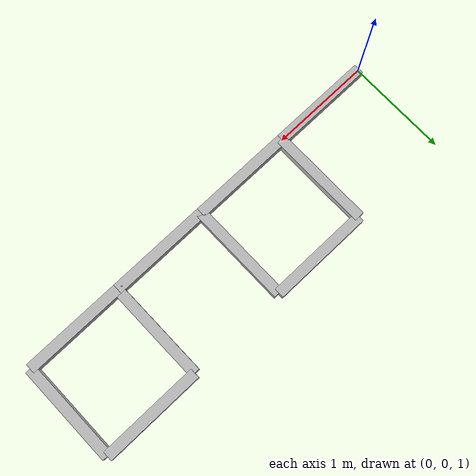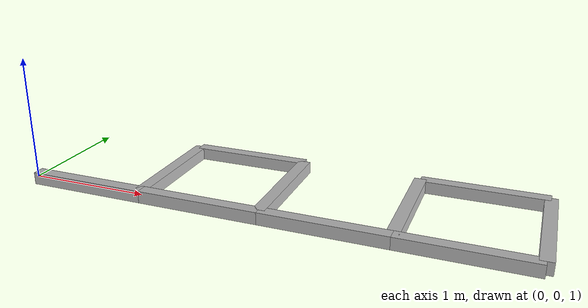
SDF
<?xml version="1.0" ?>
<sdf version="1.5">
  <world name="default">
    <physics type="ode">
      <gravity>0.000000 0.000000 0</gravity>
      <ode>
        <solver>
          <type>quick</type>
          <iters>1000</iters>
          <precon_iters>0</precon_iters>
          <sor>1.000000</sor>
        </solver>
        <constraints>
          <cfm>0.000000</cfm>
          <erp>0.200000</erp>
          <contact_max_correcting_vel>100.000000</contact_max_correcting_vel>
          <contact_surface_layer>0.01000</contact_surface_layer>
        </constraints>
      </ode>
      <bullet>
        <solver>
          <type>sequential_impulse</type>
          <iters>1000</iters>
          <sor>1.000000</sor>
        </solver>
        <constraints>
          <cfm>0.000000</cfm>
          <erp>0.200000</erp>
          <split_impulse>true</split_impulse>
          <split_impulse_penetration_threshold>-0.01</split_impulse_penetration_threshold>
          <contact_surface_layer>0.00000</contact_surface_layer>
        </constraints>
      </bullet>
      <real_time_update_rate>0.000000</real_time_update_rate>
      <max_step_size>0.001</max_step_size>
    </physics>
    <include>
      <uri>model://sun</uri>
    </include>

    <model name="model_1">
      <pose>0 0 1 0 0 0</pose>
      <link name="link_1">
        <pose>0 0 0 0 0 0</pose>
        <inertial>
          <pose>0.5 0 0 0 0 0</pose>
          <mass>1</mass>
          <inertia>
            <ixx>0.001</ixx>
            <ixy>0</ixy>
            <ixz>0</ixz>
            <iyy>0.01</iyy>
            <iyz>0</iyz>
            <izz>0.01</izz>
          </inertia>
        </inertial>
        <collision name="collision">
          <pose>0.5 0 0 0 0 0</pose>
          <geometry>
            <box>
              <size>1. .1 .1</size>
            </box>
          </geometry>
        </collision>
        <visual name="visual">
          <pose>0.5 0 0 0 0 0</pose>
          <geometry>
            <box>
              <size>1. .1 .1</size>
            </box>
          </geometry>
          <material>
            <script>Gazebo/Grey</script>
          </material>
        </visual>
      </link>
      <link name="link_2">
        <pose>1 0 0 0 0 0</pose>
        <inertial>
          <pose>0.5 0 0 0 0 0</pose>
          <mass>1</mass>
          <inertia>
            <ixx>0.001</ixx>
            <ixy>0</ixy>
            <ixz>0</ixz>
            <iyy>0.01</iyy>
            <iyz>0</iyz>
            <izz>0.01</izz>
          </inertia>
        </inertial>
        <collision name="collision">
          <pose>0.5 0 0 0 0 0</pose>
          <geometry>
            <box>
              <size>1. .1 .1</size>
            </box>
          </geometry>
        </collision>
        <visual name="visual">
          <pose>0.5 0 0 0 0 0</pose>
          <geometry>
            <box>
              <size>1. .1 .1</size>
            </box>
          </geometry>
          <material>
            <script>Gazebo/Grey</script>
          </material>
        </visual>
      </link>
      <joint name="joint_01" type="revolute">
        <parent>world</parent>
        <child>link_1</child>
        <axis>
          <xyz>1 1 0</xyz>
          <limit>
            <upper>0.7071</upper>
            <lower>-0.7071</lower>
          </limit>
          <use_parent_model_frame>true</use_parent_model_frame>
        </axis>
      </joint>
      <joint name="joint_12" type="revolute">
        <parent>link_1</parent>
        <child>link_2</child>
        <axis>
          <xyz>1 -1 0</xyz>
          <limit>
            <upper>0.7071</upper>
            <lower>-0.7071</lower>
          </limit>
          <use_parent_model_frame>true</use_parent_model_frame>
        </axis>
      </joint>
      <link name="link_3">
        <pose>2 0 0 0 0 1.570796</pose>
        <inertial>
          <pose>0.5 0 0 0 0 0</pose>
          <mass>1</mass>
          <inertia>
            <ixx>0.001</ixx>
            <ixy>0</ixy>
            <ixz>0</ixz>
            <iyy>0.01</iyy>
            <iyz>0</iyz>
            <izz>0.01</izz>
          </inertia>
        </inertial>
        <collision name="collision">
          <pose>0.5 0 0 0 0 0</pose>
          <geometry>
            <box>
              <size>1. .1 .1</size>
            </box>
          </geometry>
        </collision>
        <visual name="visual">
          <pose>0.5 0 0 0 0 0</pose>
          <geometry>
            <box>
              <size>1. .1 .1</size>
            </box>
          </geometry>
          <material>
            <script>Gazebo/Grey</script>
          </material>
        </visual>
      </link>
      <joint name="joint_23" type="revolute">
        <parent>link_2</parent>
        <child>link_3</child>
        <axis>
          <xyz>0 0 1</xyz>
          <limit>
            <upper>0.7071</upper>
            <lower>-0.7071</lower>
          </limit>
          <use_parent_model_frame>true</use_parent_model_frame>
        </axis>
      </joint>
      <link name="link_4">
        <pose>2 1 0 0 0 3.14159</pose>
        <inertial>
          <pose>0.5 0 0 0 0 0</pose>
          <mass>1</mass>
          <inertia>
            <ixx>0.001</ixx>
            <ixy>0</ixy>
            <ixz>0</ixz>
            <iyy>0.01</iyy>
            <iyz>0</iyz>
            <izz>0.01</izz>
          </inertia>
        </inertial>
        <collision name="collision">
          <pose>0.5 0 0 0 0 0</pose>
          <geometry>
            <box>
              <size>1. .1 .1</size>
            </box>
          </geometry>
        </collision>
        <visual name="visual">
          <pose>0.5 0 0 0 0 0</pose>
          <geometry>
            <box>
              <size>1. .1 .1</size>
            </box>
          </geometry>
          <material>
            <script>Gazebo/Grey</script>
          </material>
        </visual>
      </link>
      <joint name="joint_34" type="revolute">
        <parent>link_3</parent>
        <child>link_4</child>
        <axis>
          <xyz>0 0 1</xyz>
          <limit>
            <upper>0.7071</upper>
            <lower>-0.7071</lower>
          </limit>
          <use_parent_model_frame>true</use_parent_model_frame>
        </axis>
      </joint>
      <link name="link_5">
        <pose>1 1 0 0 0 4.712389</pose>
        <inertial>
          <pose>0.5 0 0 0 0 0</pose>
          <mass>1</mass>
          <inertia>
            <ixx>0.001</ixx>
            <ixy>0</ixy>
            <ixz>0</ixz>
            <iyy>0.01</iyy>
            <iyz>0</iyz>
            <izz>0.01</izz>
          </inertia>
        </inertial>
        <collision name="collision">
          <pose>0.5 0 0 0 0 0</pose>
          <geometry>
            <box>
              <size>1. .1 .1</size>
            </box>
          </geometry>
        </collision>
        <visual name="visual">
          <pose>0.5 0 0 0 0 0</pose>
          <geometry>
            <box>
              <size>1. .1 .1</size>
            </box>
          </geometry>
          <material>
            <script>Gazebo/Grey</script>
          </material>
        </visual>
      </link>
      <joint name="joint_45" type="revolute">
        <parent>link_4</parent>
        <child>link_5</child>
        <axis>
          <xyz>0 0 1</xyz>
          <limit>
            <upper>0.7071</upper>
            <lower>-0.7071</lower>
          </limit>
          <use_parent_model_frame>true</use_parent_model_frame>
        </axis>
      </joint>
      <joint name="joint_52" type="revolute">
        <parent>link_5</parent>
        <child>link_2</child>
        <axis>
          <xyz>0 0 1</xyz>
          <limit>
            <upper>0.7071</upper>
            <lower>-0.7071</lower>
          </limit>
          <use_parent_model_frame>true</use_parent_model_frame>
        </axis>
      </joint>

      <!-- branch from link_2 -->
      <link name="link_2a">
        <pose>2 0 0 0 0 0</pose>
        <inertial>
          <pose>0.5 0 0 0 0 0</pose>
          <mass>1</mass>
          <inertia>
            <ixx>0.001</ixx>
            <ixy>0</ixy>
            <ixz>0</ixz>
            <iyy>0.01</iyy>
            <iyz>0</iyz>
            <izz>0.01</izz>
          </inertia>
        </inertial>
        <collision name="collision">
          <pose>0.5 0 0 0 0 0</pose>
          <geometry>
            <box>
              <size>1. .1 .1</size>
            </box>
          </geometry>
        </collision>
        <visual name="visual">
          <pose>0.5 0 0 0 0 0</pose>
          <geometry>
            <box>
              <size>1. .1 .1</size>
            </box>
          </geometry>
          <material>
            <script>Gazebo/Grey</script>
          </material>
        </visual>
      </link>
      <joint name="joint_22a" type="revolute">
        <parent>link_2</parent>
        <child>link_2a</child>
        <axis>
          <xyz>0 0 1</xyz>
          <limit>
            <upper>0.7071</upper>
            <lower>-0.7071</lower>
          </limit>
          <use_parent_model_frame>true</use_parent_model_frame>
        </axis>
      </joint>
      <link name="link_2b">
        <pose>3 0 0 0 0 0</pose>
        <inertial>
          <pose>0.5 0 0 0 0 0</pose>
          <mass>1</mass>
          <inertia>
            <ixx>0.001</ixx>
            <ixy>0</ixy>
            <ixz>0</ixz>
            <iyy>0.01</iyy>
            <iyz>0</iyz>
            <izz>0.01</izz>
          </inertia>
        </inertial>
        <collision name="collision">
          <pose>0.5 0 0 0 0 0</pose>
          <geometry>
            <box>
              <size>1. .1 .1</size>
            </box>
          </geometry>
        </collision>
        <visual name="visual">
          <pose>0.5 0 0 0 0 0</pose>
          <geometry>
            <box>
              <size>1. .1 .1</size>
            </box>
          </geometry>
          <material>
            <script>Gazebo/Grey</script>
          </material>
        </visual>
      </link>
      <joint name="joint_2a2b" type="revolute">
        <parent>link_2a</parent>
        <child>link_2b</child>
        <axis>
          <xyz>0 0 1</xyz>
          <limit>
            <upper>0.7071</upper>
            <lower>-0.7071</lower>
          </limit>
          <use_parent_model_frame>true</use_parent_model_frame>
        </axis>
      </joint>

      <!-- another loop from link_2b -->
      <link name="link_3a">
        <pose>4 0 0 0 0 1.570796</pose>
        <inertial>
          <pose>0.5 0 0 0 0 0</pose>
          <mass>1</mass>
          <inertia>
            <ixx>0.001</ixx>
            <ixy>0</ixy>
            <ixz>0</ixz>
            <iyy>0.01</iyy>
            <iyz>0</iyz>
            <izz>0.01</izz>
          </inertia>
        </inertial>
        <collision name="collision">
          <pose>0.5 0 0 0 0 0</pose>
          <geometry>
            <box>
              <size>1. .1 .1</size>
            </box>
          </geometry>
        </collision>
        <visual name="visual">
          <pose>0.5 0 0 0 0 0</pose>
          <geometry>
            <box>
              <size>1. .1 .1</size>
            </box>
          </geometry>
          <material>
            <script>Gazebo/Grey</script>
          </material>
        </visual>
      </link>
      <joint name="joint_2b3a" type="revolute">
        <parent>link_2b</parent>
        <child>link_3a</child>
        <axis>
          <xyz>0 0 1</xyz>
          <limit>
            <upper>0.7071</upper>
            <lower>-0.7071</lower>
          </limit>
          <use_parent_model_frame>true</use_parent_model_frame>
        </axis>
      </joint>
      <link name="link_4a">
        <pose>4 1 0 0 0 3.14159</pose>
        <inertial>
          <pose>0.5 0 0 0 0 0</pose>
          <mass>1</mass>
          <inertia>
            <ixx>0.001</ixx>
            <ixy>0</ixy>
            <ixz>0</ixz>
            <iyy>0.01</iyy>
            <iyz>0</iyz>
            <izz>0.01</izz>
          </inertia>
        </inertial>
        <collision name="collision">
          <pose>0.5 0 0 0 0 0</pose>
          <geometry>
            <box>
              <size>1. .1 .1</size>
            </box>
          </geometry>
        </collision>
        <visual name="visual">
          <pose>0.5 0 0 0 0 0</pose>
          <geometry>
            <box>
              <size>1. .1 .1</size>
            </box>
          </geometry>
          <material>
            <script>Gazebo/Grey</script>
          </material>
        </visual>
      </link>
      <joint name="joint_3a4a" type="revolute">
        <parent>link_3a</parent>
        <child>link_4a</child>
        <axis>
          <xyz>0 0 1</xyz>
          <limit>
            <upper>0.7071</upper>
            <lower>-0.7071</lower>
          </limit>
          <use_parent_model_frame>true</use_parent_model_frame>
        </axis>
      </joint>
      <link name="link_5a">
        <pose>3 1 0 0 0 4.712389</pose>
        <inertial>
          <pose>0.5 0 0 0 0 0</pose>
          <mass>1</mass>
          <inertia>
            <ixx>0.001</ixx>
            <ixy>0</ixy>
            <ixz>0</ixz>
            <iyy>0.01</iyy>
            <iyz>0</iyz>
            <izz>0.01</izz>
          </inertia>
        </inertial>
        <collision name="collision">
          <pose>0.5 0 0 0 0 0</pose>
          <geometry>
            <box>
              <size>1. .1 .1</size>
            </box>
          </geometry>
        </collision>
        <visual name="visual">
          <pose>0.5 0 0 0 0 0</pose>
          <geometry>
            <box>
              <size>1. .1 .1</size>
            </box>
          </geometry>
          <material>
            <script>Gazebo/Grey</script>
          </material>
        </visual>
      </link>
      <joint name="joint_4a5a" type="revolute">
        <parent>link_4a</parent>
        <child>link_5a</child>
        <axis>
          <xyz>0 0 1</xyz>
          <limit>
            <upper>0.7071</upper>
            <lower>-0.7071</lower>
          </limit>
          <use_parent_model_frame>true</use_parent_model_frame>
        </axis>
      </joint>
      <joint name="joint_5a2b" type="revolute">
        <parent>link_5a</parent>
        <child>link_2b</child>
        <axis>
          <xyz>0 0 1</xyz>
          <limit>
            <upper>0.7071</upper>
            <lower>-0.7071</lower>
          </limit>
          <use_parent_model_frame>true</use_parent_model_frame>
        </axis>
      </joint>

    </model>
  </world>
</sdf>
